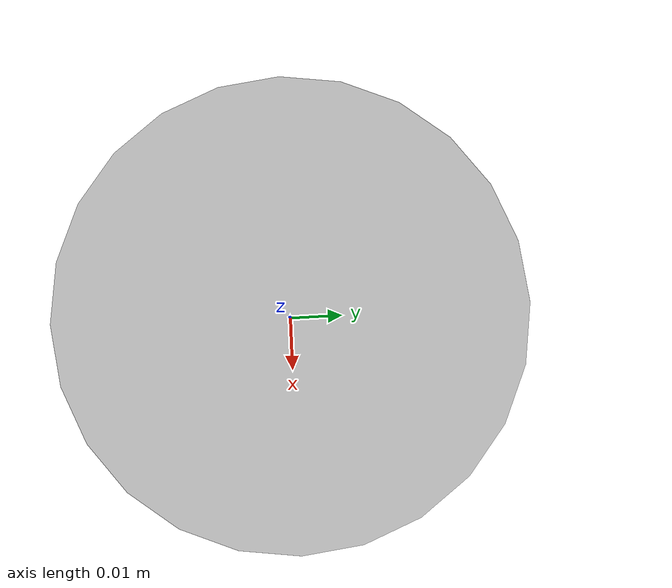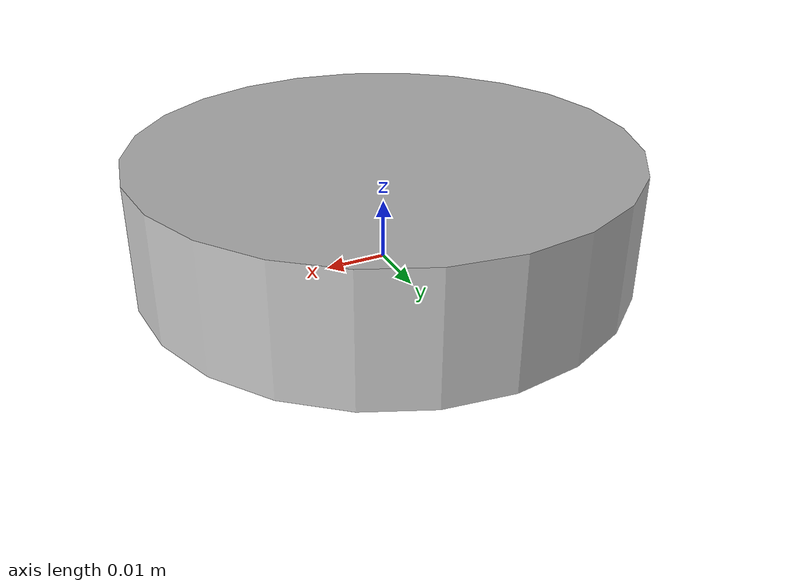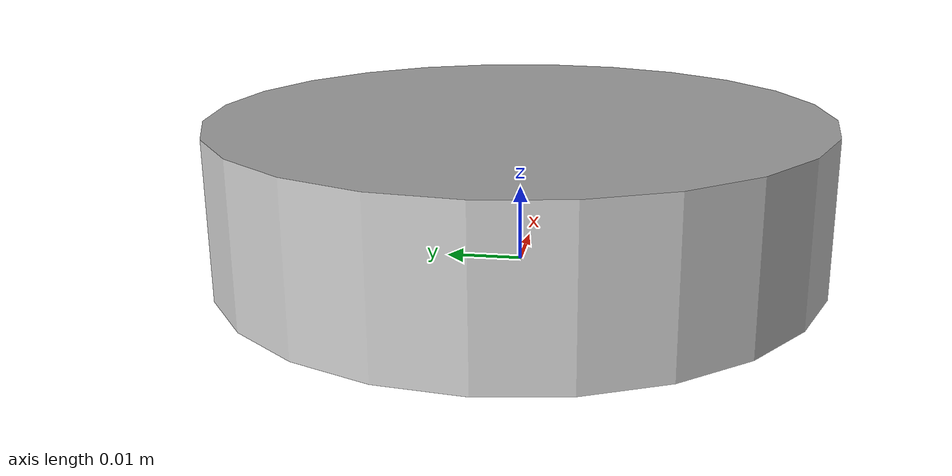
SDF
<?xml version="1.0"?>
<sdf version="1.6">
  <model name="wacoh_dynpick_wlf_6a500_20_rad_b">
    <pose>0 0 0 0 0 0</pose>
    <static>false</static>
    <link name="mount">
      <gravity>false</gravity>
      <inertial>
        <mass>1000.0</mass>
        <inertia>
          <ixx>1.0</ixx><iyy>1.0</iyy><izz>1.0</izz>
          <ixy>0.0</ixy><ixz>0.0</ixz><iyz>0.0</iyz>
        </inertia>
      </inertial>
    </link>
    <link name="body">
      <!-- Lift body so cylinder (length 0.02) sits flush on ground. -->
      <pose>0 0 0.01 0 0 0</pose>
      <inertial>
        <mass>0.25</mass>
        <inertia>
          <ixx>1e-6</ixx><iyy>1e-6</iyy><izz>1e-6</izz>
          <ixy>0.0</ixy><ixz>0.0</ixz><iyz>0.0</iyz>
        </inertia>
      </inertial>
      <collision name="tactile_collision">
        <geometry>
          <cylinder>
            <radius>0.04</radius>
            <length>0.02</length>
          </cylinder>
        </geometry>
      </collision>
      <!-- Bounding size for test framework -->
      <sensor_size>0.08 0.08 0.02</sensor_size>
      <shape>cylinder</shape>
      <visual name="visual">
        <geometry>
          <cylinder>
            <radius>0.04</radius>
            <length>0.02</length>
          </cylinder>
        </geometry>
      </visual>
      <sensor name="tactile_bumper" type="contact">
        <always_on>true</always_on>
        <update_rate>50.0</update_rate>
        <contact>
          <collision>tactile_collision</collision>
        </contact>
        <plugin name="tactile_bumper_plugin" filename="libgazebo_ros_bumper.so">
          <robotNamespace>/wacoh_dynpick_wlf_6a500_20_rad_b</robotNamespace>
          <topicName>bumper_states</topicName>
          <frameName>body</frameName>
        </plugin>
      </sensor>
    </link>
    <joint name="ft_joint" type="fixed">
      <parent>mount</parent>
      <child>body</child>
      <sensor name="ft_sensor" type="force_torque">
        <always_on>true</always_on>
        <update_rate>1000</update_rate>
        <visualize>false</visualize>
        <force_torque>
          <frame>child</frame>
          <measure_direction>child_to_parent</measure_direction>
        </force_torque>
      </sensor>
    </joint>
    <joint name="world_anchor" type="fixed">
      <parent>world</parent>
      <child>mount</child>
    </joint>
  </model>
</sdf>
